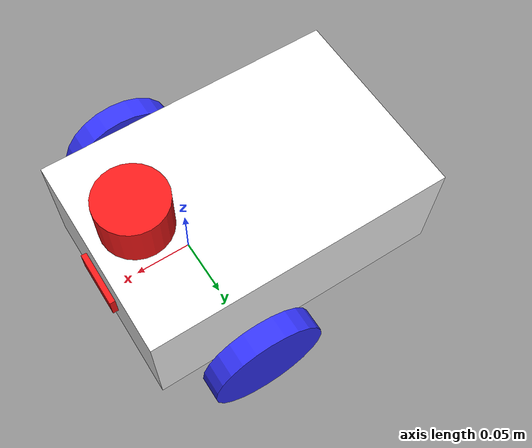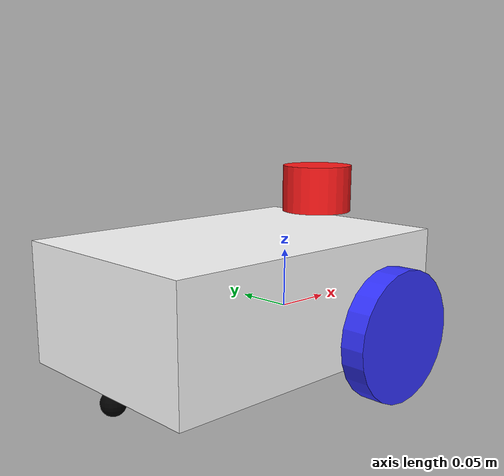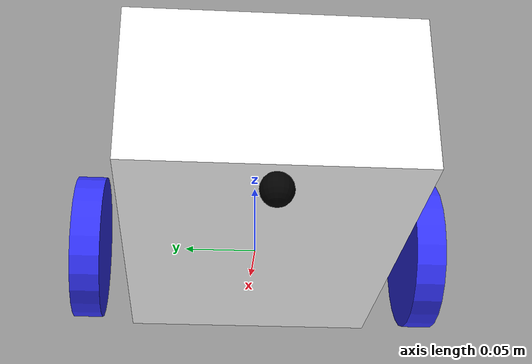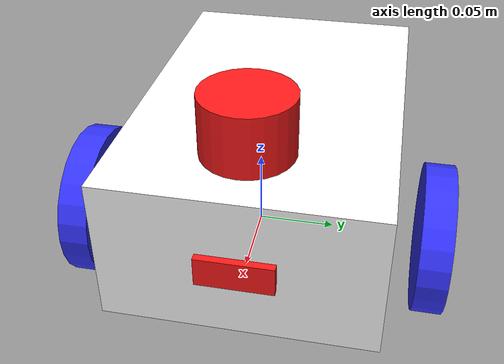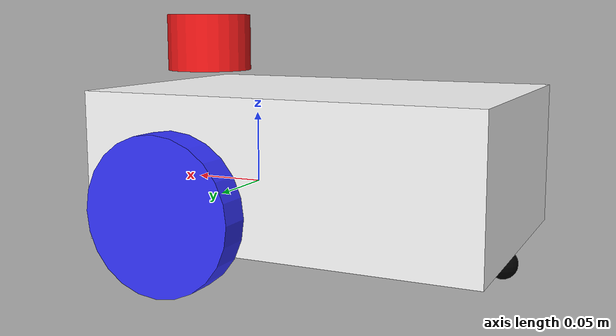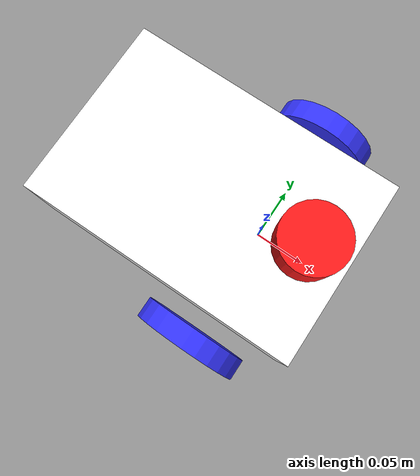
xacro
<?xml version="1.0"?>
<robot xmlns:xacro="http://www.ros.org/wiki/xacro"  name="robot">

    <xacro:arg name="use_ros2_control" default="true"/>
    <xacro:arg name="sim_mode" default="false"/>

    <xacro:include filename="robot_core.xacro"/>

    <xacro:if value="$(arg use_ros2_control)">
        <xacro:include filename="ros2_control.xacro"/>
    </xacro:if>

    <xacro:unless value="$(arg use_ros2_control)">
        <xacro:include filename="gazebo_control.xacro"/>
    </xacro:unless>

    <xacro:include filename="lidar.xacro"/>
    <xacro:include filename="camera.xacro"/>
</robot>

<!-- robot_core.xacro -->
<robot xmlns:xacro="http://www.ros.org/wiki/xacro">

    <xacro:include filename="inertial_macros.xacro"/>

    <material name="white">
        <color rgba="1 1 1 1" />
    </material>

    <material name="red">
        <color rgba="1 0.1 0.1 1" />
    </material>

    <material name="orange">
        <color rgba="1 0.3 0.1 1"/>
    </material>

    <material name="blue">
        <color rgba="0.2 0.2 1 1"/>
    </material>

    <material name="black">
        <color rgba="0 0 0 1"/>
    </material>

    <!-- BASE LINK -->

    <link name="base_link">

    </link>

        <!-- BASE_FOOTPRINT LINK -->

    <joint name="base_footprint_joint" type="fixed">
        <parent link="base_link"/>
        <child link="base_footprint"/>
        <origin xyz="0 0 0" rpy="0 0 0"/>
    </joint>

    <link name="base_footprint">
    </link>

    <!-- CHASSIS LINK -->

    <joint name="chassis_joint" type="fixed">
        <parent link="base_link"/>
        <child link="chassis"/>
        <origin xyz="-0.19 0 0"/>
    </joint>

    <link name="chassis">
        <visual>
            <origin xyz="0.135 0 0.02"/>
            <geometry>
                <box size="0.27 0.18 0.1"/>
            </geometry>
            <material name="white"/>
        </visual>
        <collision>
            <origin xyz="0.135 0 0.02"/>
            <geometry>
                <box size="0.27 0.18 0.1"/>
            </geometry>
        </collision>
        <xacro:inertial_box mass="2" x="0.27" y="0.18" z="0.1">
            <origin xyz="0.135 0.0 0.02" rpy="0 0 0"/>
        </xacro:inertial_box>
    </link>

    <gazebo reference="chassis">
        <material>
            Gazebo/White
        </material>
    </gazebo>

    <!-- LEFT WHEEL LINK-->
    <joint name="left_wheel_joint" type="continuous">
        <parent link="base_link"/>
        <child link="left_wheel"/>
        <origin xyz="0 0.1175 0" rpy="-${pi/2} 0.0 0.0"/>
        <axis xyz="0.0 0.0 1"/>
    </joint>

    <link name="left_wheel">
        <visual>
            <geometry>
                <cylinder radius="0.05" length="0.02"/>
            </geometry>
            <material name="blue"/>
        </visual>
        <collision>
            <geometry>
                <sphere radius="0.05"/>
            </geometry>
        </collision>
        <xacro:inertial_cylinder mass="0.2" length="0.02" radius="0.0525">
            <origin xyz="0.0 0.0 0.0" rpy="0.0 0.0 0.0"/>
        </xacro:inertial_cylinder>
    </link>

    <gazebo reference="left_wheel">
        <material>
            Gazebo/Blue
        </material>
    </gazebo>

    <!-- RIGHT WHEEL LINK-->

    <joint name="right_wheel_joint" type="continuous">
        <parent link="base_link"/>
        <child link="right_wheel"/>
        <origin xyz="0 -0.1175 0" rpy="${pi/2} 0.0 0.0"/>
        <axis xyz="0.0 0.0 -1"/>
    </joint>

    <link name="right_wheel">
        <visual>
            <geometry>
                <cylinder radius="0.0525" length="0.02"/>
            </geometry>
            <material name="blue"/>
        </visual>
        <collision>
            <geometry>
                <sphere radius="0.0525"/>
            </geometry>
        </collision>
        <xacro:inertial_cylinder mass="0.2" length="0.02" radius="0.0525">
            <origin xyz="0.0 0.0 0.0" rpy="0.0 0.0 0.0"/>
        </xacro:inertial_cylinder>
    </link>

    <gazebo reference="right_wheel">
        <material>
            Gazebo/Blue
        </material>
    </gazebo>

    <!--  CASTER WHEEL LINK-->

    <joint name="caster_wheel_joint" type="fixed">
        <parent link="chassis"/>
        <child link="caster_wheel"/>
        <origin xyz="0.01 0 -0.04"/>
    </joint>

    <link name="caster_wheel">
        <visual>
            <origin xyz="0.0 0.0 0.0" rpy="0.0 0.0 0.0"/>
            <geometry>
                <sphere radius="0.01"/>
            </geometry>
            <material name="black"/>
        </visual>
        <collision>
            <origin xyz="0.0 0.0 0.0" rpy="0.0 0.0 0.0"/>
            <geometry>
                <sphere radius="0.01"/>
            </geometry>
        </collision>
        <xacro:inertial_sphere mass="0.1" radius="0.01">
            <origin xyz="0.0 0.0 0.0" rpy="0.0 0.0 0.0"/>
        </xacro:inertial_sphere>
    </link>

    <gazebo reference="caster_wheel">
        <material>
            Gazebo/Black
        </material>
        <mu1 value="0.001"/>
        <mu2 value="0.001"/>
    </gazebo>

</robot>

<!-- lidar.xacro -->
<robot xmlns:xacro="http://www.ros.org/wiki/xacro">

    <joint name="laser_joint" type="fixed">
        <parent link="chassis"/>
        <child link="laser_frame"/>
        <origin xyz="0.23 0.0 0.1" rpy="0.0 0.0 0.0"/>

    </joint>
    <link name="laser_frame">
        <visual>
            <geometry>
                <cylinder radius="0.03" length="0.04"/>
            </geometry>
            <material name="red"/>
        </visual>
        <collision>
            <geometry>
                <cylinder radius="0.03" length="0.04"/>
            </geometry>
        </collision>
        <xacro:inertial_cylinder mass="0.2" length="0.04" radius="0.03">
            <origin xyz="0.0 0.0 0.0" rpy="0.0 0.0 0.0"/>
        </xacro:inertial_cylinder>

    </link>

    <gazebo reference="laser_frame">
        <material>Gazebo/Red</material>

        <sensor name="laser" type="ray">
            <pose> 0 0 0 0 0 0 </pose>
            <visualize>false</visualize>
            <update_rate>10</update_rate>
            <ray>
                <scan>
                    <horizontal>
                        <samples>360</samples>
                        <min_angle>-3.14</min_angle>
                        <max_angle>3.14</max_angle>
                    </horizontal>
                </scan>
                <range>
                    <min>0.3</min>
                    <max>12</max>
                </range>
            </ray>
            <plugin name="laser_controller" filename="libgazebo_ros_ray_sensor.so">
                <ros>
                    <argument>~/out:=scan</argument>
                </ros>
                <output_type>sensor_msgs/LaserScan</output_type>
                <frame_name>laser_frame</frame_name>
            </plugin>
        </sensor>
    </gazebo>

</robot>

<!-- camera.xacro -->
<robot xmlns:xacro="http://www.ros.org/wiki/xacro">

    <joint name="camera_joint" type="fixed">
        <parent link="chassis"/>
        <child link="camera_link"/>
        <origin xyz="0.27 0.0 0.02" rpy="0.0 0.0 0.0"/>
    </joint>

    <link name="camera_link">
        <visual>
            <geometry>
                <box size="0.01 0.05 0.02" length="0.04"/>
            </geometry>
            <material name="red"/>
        </visual>
    </link>

    <joint name="camera_optical_joint" type="fixed">
        <parent link="camera_link"/>
        <child link="camera_link_optical"/>
        <origin xyz="0 0 0" rpy="${-pi/2} 0.0 ${-pi/2}"/>
    </joint>

    <link name="camera_link_optical"></link>

    <gazebo reference="camera_link">
        <material>Gazebo/Red</material>

        <sensor name="camera" type="camera">
            <pose> 0 0 0 0 0 0 </pose>
            <visualize>true</visualize>
            <update_rate>10</update_rate>
            <camera>

                <horizontal_fov>1.089</horizontal_fov>
                <image>
                    <format>R8G8B8</format>
                    <width>640</width>
                    <height>480</height>
                </image>
                <clip>
                    <near>0.05</near>
                    <far>8.0</far>
                </clip>
            </camera>
            <plugin name="camera_controller" filename="libgazebo_ros_camera.so">
                <frame_name>camera_link_optical</frame_name>
            </plugin>
        </sensor>
    </gazebo>

</robot>
